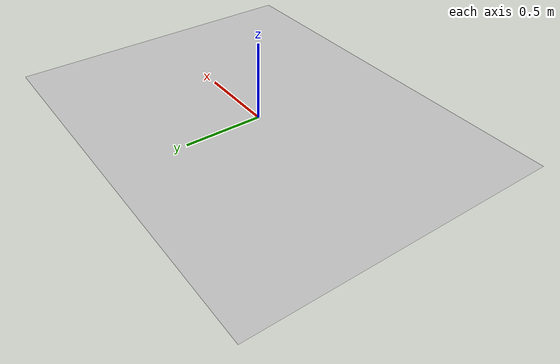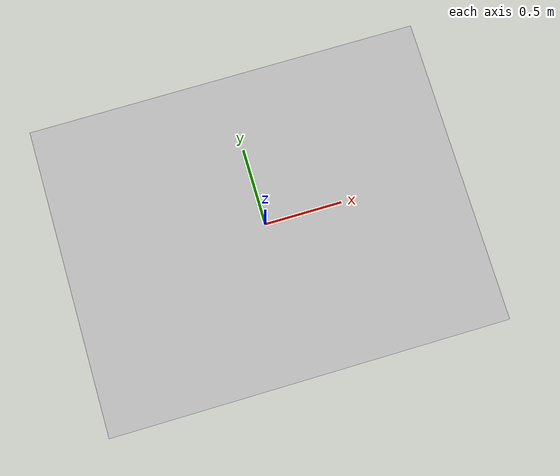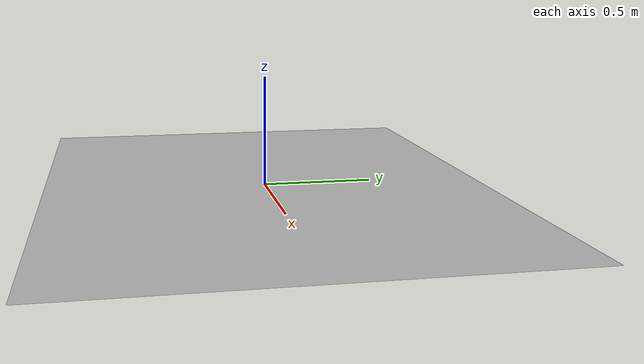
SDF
<?xml version="1.0"?>
<sdf version="1.6">

<!-- Calibration plane. -->
<model name="chess_calibration_plane">
  <static>true</static>
    <link name="link">
      <visual name="visual">
        <geometry>
          <mesh>
            <uri>model://chess_calibration_plane/meshes/chess_calibration_plane.dae</uri>
          </mesh>
        </geometry>
      </visual>
    </link>
  </model>
</sdf>
